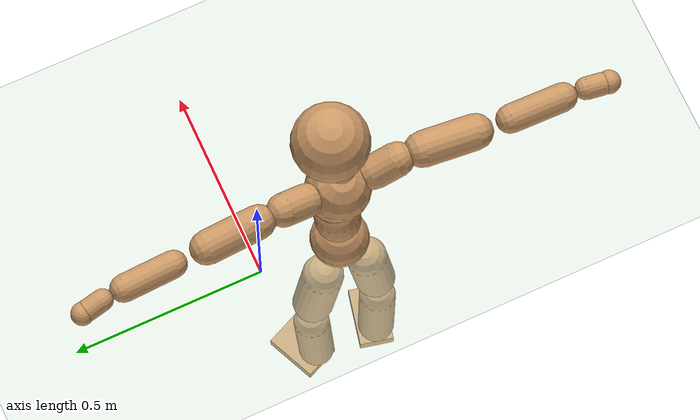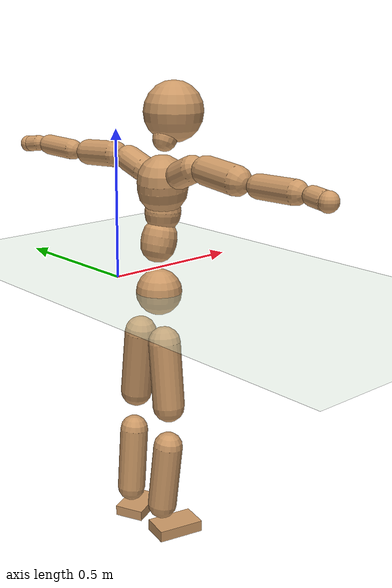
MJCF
<mujoco model="humanoid">
  <compiler coordinate="local" angle="radian"/>
  <default>
    <joint damping="0.0" armature="0.01" stiffness="0.0" limited="true"/>
    <geom conaffinity="1" condim="3" contype="7" margin="0.001" rgba="0.8 0.6 .4 1"/>
  </default>
  <asset>
    <texture type="skybox" builtin="gradient" rgb1=".4 .5 .6" rgb2="0 0 0" width="100" height="100"/>
    <texture builtin="flat" height="1278" mark="cross" markrgb="1 1 1" name="texgeom" random="0.01" rgb1="0.8 0.6 0.4" rgb2="0.8 0.6 0.4" type="cube" width="127"/>
    <texture builtin="checker" height="100" name="texplane" rgb1="0 0 0" rgb2="0.8 0.8 0.8" type="2d" width="100"/>
    <material name="MatPlane" reflectance="0.5" shininess="1" specular="1" texrepeat="60 60" texture="texplane"/>
    <material name="geom" texture="texgeom" texuniform="true"/>
  </asset>
  <worldbody>
    <light cutoff="100" diffuse="1 1 1" dir="-0 0 -1.3" directional="true" exponent="1" pos="0 0 1.3" specular=".1 .1 .1"/>
    <geom conaffinity="1" condim="3" name="floor" pos="0 0 0" rgba="0.8 0.9 0.8 1" size="100 100 .2" type="plane" material="MatPlane"/>
    <body name="Pelvis" pos="0.0009 -0.2158 -0.0026">
      <freejoint name="Pelvis"/>
      <geom type="sphere" contype="1" conaffinity="1" density="500" size="0.0756" pos="0.0000 0.0000 0.0000" name="Pelvis"/>
      <body name="L_Hip" pos="-0.0302 0.0497 -0.0742">
        <joint name="L_Hip_x" type="hinge" pos="0 0 0" axis="1 0 0" stiffness="800" damping="80" armature="0.02" range="-180.0000 180.0000"/>
        <joint name="L_Hip_y" type="hinge" pos="0 0 0" axis="0 1 0" stiffness="800" damping="80" armature="0.02" range="-180.0000 180.0000"/>
        <joint name="L_Hip_z" type="hinge" pos="0 0 0" axis="0 0 1" stiffness="800" damping="80" armature="0.02" range="-180.0000 180.0000"/>
        <geom type="capsule" contype="1" conaffinity="1" density="500" fromto="0.0011 0.0092 -0.0737 0.0045 0.0369 -0.2949" size="0.0537" name="L_Hip"/>
        <body name="L_Knee" pos="0.0056 0.0461 -0.3687">
          <joint name="L_Knee_x" type="hinge" pos="0 0 0" axis="1 0 0" stiffness="800" damping="80" armature="0.02" range="-180.0000 180.0000"/>
          <joint name="L_Knee_y" type="hinge" pos="0 0 0" axis="0 1 0" stiffness="800" damping="80" armature="0.02" range="-180.0000 180.0000"/>
          <joint name="L_Knee_z" type="hinge" pos="0 0 0" axis="0 0 1" stiffness="800" damping="80" armature="0.02" range="-180.0000 180.0000"/>
          <geom type="capsule" contype="1" conaffinity="1" density="500" fromto="-0.0062 -0.0018 -0.0724 -0.0246 -0.0073 -0.2896" size="0.0479" name="L_Knee"/>
          <body name="L_Ankle" pos="-0.0308 -0.0091 -0.362">
            <joint name="L_Ankle_x" type="hinge" pos="0 0 0" axis="1 0 0" stiffness="800" damping="80" armature="0.02" range="-180.0000 180.0000"/>
            <joint name="L_Ankle_y" type="hinge" pos="0 0 0" axis="0 1 0" stiffness="800" damping="80" armature="0.02" range="-180.0000 180.0000"/>
            <joint name="L_Ankle_z" type="hinge" pos="0 0 0" axis="0 0 1" stiffness="800" damping="80" armature="0.02" range="-180.0000 180.0000"/>
            <geom type="box" contype="1" conaffinity="1" density="500" pos="0.0523 0.0233 -0.0267" size="0.0726 0.0499 0.0176" quat="0.9781 0.0000 0.0000 0.2080" name="L_Ankle"/>
            <body name="L_Toe" pos="0.1046 0.0466 -0.0535">
              <joint name="L_Toe_x" type="hinge" pos="0 0 0" axis="1 0 0" stiffness="500" damping="50" armature="0.02" range="-180.0000 180.0000"/>
              <joint name="L_Toe_y" type="hinge" pos="0 0 0" axis="0 1 0" stiffness="500" damping="50" armature="0.02" range="-180.0000 180.0000"/>
              <joint name="L_Toe_z" type="hinge" pos="0 0 0" axis="0 0 1" stiffness="500" damping="50" armature="0.02" range="-180.0000 180.0000"/>
              <geom type="box" contype="1" conaffinity="1" density="500" pos="0.0000 0.0000 0.0289" size="0.001 0.0024 0.001" quat="0.9772 0.0000 0.0000 0.2122" name="L_Toe"/>
            </body>
          </body>
        </body>
      </body>
      <body name="R_Hip" pos="-0.0289 -0.0526 -0.0805">
        <joint name="R_Hip_x" type="hinge" pos="0 0 0" axis="1 0 0" stiffness="800" damping="80" armature="0.02" range="-180.0000 180.0000"/>
        <joint name="R_Hip_y" type="hinge" pos="0 0 0" axis="0 1 0" stiffness="800" damping="80" armature="0.02" range="-180.0000 180.0000"/>
        <joint name="R_Hip_z" type="hinge" pos="0 0 0" axis="0 0 1" stiffness="800" damping="80" armature="0.02" range="-180.0000 180.0000"/>
        <geom type="capsule" contype="1" conaffinity="1" density="500" fromto="-0.0009 -0.0089 -0.0716 -0.0035 -0.0356 -0.2865" size="0.053" name="R_Hip"/>
        <body name="R_Knee" pos="-0.0044 -0.0445 -0.3581">
          <joint name="R_Knee_x" type="hinge" pos="0 0 0" axis="1 0 0" stiffness="800" damping="80" armature="0.02" range="-180.0000 180.0000"/>
          <joint name="R_Knee_y" type="hinge" pos="0 0 0" axis="0 1 0" stiffness="800" damping="80" armature="0.02" range="-180.0000 180.0000"/>
          <joint name="R_Knee_z" type="hinge" pos="0 0 0" axis="0 0 1" stiffness="800" damping="80" armature="0.02" range="-180.0000 180.0000"/>
          <geom type="capsule" contype="1" conaffinity="1" density="500" fromto="-0.0057 0.0030 -0.0711 -0.0227 0.0118 -0.2846" size="0.049" name="R_Knee"/>
          <body name="R_Ankle" pos="-0.0284 0.0148 -0.3557">
            <joint name="R_Ankle_x" type="hinge" pos="0 0 0" axis="1 0 0" stiffness="800" damping="80" armature="0.02" range="-180.0000 180.0000"/>
            <joint name="R_Ankle_y" type="hinge" pos="0 0 0" axis="0 1 0" stiffness="800" damping="80" armature="0.02" range="-180.0000 180.0000"/>
            <joint name="R_Ankle_z" type="hinge" pos="0 0 0" axis="0 0 1" stiffness="800" damping="80" armature="0.02" range="-180.0000 180.0000"/>
            <geom type="box" contype="1" conaffinity="1" density="500" pos="0.0565 -0.0127 -0.0286" size="0.0792 0.0464 0.0193" quat="0.9939 0.0000 0.0000 -0.1105" name="R_Ankle"/>
            <body name="R_Toe" pos="0.1129 -0.0254 -0.0573">
              <joint name="R_Toe_x" type="hinge" pos="0 0 0" axis="1 0 0" stiffness="500" damping="50" armature="0.02" range="-180.0000 180.0000"/>
              <joint name="R_Toe_y" type="hinge" pos="0 0 0" axis="0 1 0" stiffness="500" damping="50" armature="0.02" range="-180.0000 180.0000"/>
              <joint name="R_Toe_z" type="hinge" pos="0 0 0" axis="0 0 1" stiffness="500" damping="50" armature="0.02" range="-180.0000 180.0000"/>
              <geom type="box" contype="1" conaffinity="1" density="500" pos="0.0000 0.0000 0.0318" size="0.0009 0.0022 0.0011" quat="0.9950 0.0000 0.0000 -0.1003" name="R_Toe"/>
            </body>
          </body>
        </body>
      </body>
      <body name="Torso" pos="-0.0134 0.0034 0.1043">
        <joint name="Torso_x" type="hinge" pos="0 0 0" axis="1 0 0" stiffness="1000" damping="100" armature="0.02" range="-180.0000 180.0000"/>
        <joint name="Torso_y" type="hinge" pos="0 0 0" axis="0 1 0" stiffness="1000" damping="100" armature="0.02" range="-180.0000 180.0000"/>
        <joint name="Torso_z" type="hinge" pos="0 0 0" axis="0 0 1" stiffness="1000" damping="100" armature="0.02" range="-180.0000 180.0000"/>
        <geom type="capsule" contype="1" conaffinity="1" density="500" fromto="0.0199 0.0020 0.0783 0.0133 0.0014 0.0522" size="0.0578" name="Torso"/>
        <body name="Spine" pos="0.0331 0.0034 0.1305">
          <joint name="Spine_x" type="hinge" pos="0 0 0" axis="1 0 0" stiffness="1000" damping="100" armature="0.02" range="-180.0000 180.0000"/>
          <joint name="Spine_y" type="hinge" pos="0 0 0" axis="0 1 0" stiffness="1000" damping="100" armature="0.02" range="-180.0000 180.0000"/>
          <joint name="Spine_z" type="hinge" pos="0 0 0" axis="0 0 1" stiffness="1000" damping="100" armature="0.02" range="-180.0000 180.0000"/>
          <geom type="capsule" contype="1" conaffinity="1" density="500" fromto="0.0007 -0.0011 0.0312 0.0005 -0.0007 0.0208" size="0.0587" name="Spine"/>
          <body name="Chest" pos="0.0012 -0.0019 0.052">
            <joint name="Chest_x" type="hinge" pos="0 0 0" axis="1 0 0" stiffness="1000" damping="100" armature="0.02" range="-180.0000 180.0000"/>
            <joint name="Chest_y" type="hinge" pos="0 0 0" axis="0 1 0" stiffness="1000" damping="100" armature="0.02" range="-180.0000 180.0000"/>
            <joint name="Chest_z" type="hinge" pos="0 0 0" axis="0 0 1" stiffness="1000" damping="100" armature="0.02" range="-180.0000 180.0000"/>
            <geom type="capsule" contype="1" conaffinity="1" density="500" fromto="-0.0095 -0.0057 0.0753 -0.0063 -0.0038 0.0502" size="0.0812" name="Chest"/>
            <body name="Neck" pos="-0.0161 -0.0139 0.1849">
              <joint name="Neck_x" type="hinge" pos="0 0 0" axis="1 0 0" stiffness="500" damping="50" armature="0.02" range="-180.0000 180.0000"/>
              <joint name="Neck_y" type="hinge" pos="0 0 0" axis="0 1 0" stiffness="500" damping="50" armature="0.02" range="-180.0000 180.0000"/>
              <joint name="Neck_z" type="hinge" pos="0 0 0" axis="0 0 1" stiffness="500" damping="50" armature="0.02" range="-180.0000 180.0000"/>
              <geom type="capsule" contype="1" conaffinity="1" density="500" fromto="0.0103 0.0017 0.0201 0.0414 0.0068 0.0804" size="0.0388" name="Neck"/>
              <body name="Head" pos="0.0517 0.0086 0.1005">
                <joint name="Head_x" type="hinge" pos="0 0 0" axis="1 0 0" stiffness="500" damping="50" armature="0.02" range="-180.0000 180.0000"/>
                <joint name="Head_y" type="hinge" pos="0 0 0" axis="0 1 0" stiffness="500" damping="50" armature="0.02" range="-180.0000 180.0000"/>
                <joint name="Head_z" type="hinge" pos="0 0 0" axis="0 0 1" stiffness="500" damping="50" armature="0.02" range="-180.0000 180.0000"/>
                <geom type="sphere" contype="1" conaffinity="1" density="500" size="0.0957" pos="0.0000 0.0000 0.0000" name="Head"/>
              </body>
            </body>
            <body name="L_Thorax" pos="-0.0137 0.0603 0.0953">
              <joint name="L_Thorax_x" type="hinge" pos="0 0 0" axis="1 0 0" stiffness="500" damping="50" armature="0.02" range="-180.0000 180.0000"/>
              <joint name="L_Thorax_y" type="hinge" pos="0 0 0" axis="0 1 0" stiffness="500" damping="50" armature="0.02" range="-180.0000 180.0000"/>
              <joint name="L_Thorax_z" type="hinge" pos="0 0 0" axis="0 0 1" stiffness="500" damping="50" armature="0.02" range="-180.0000 180.0000"/>
              <geom type="capsule" contype="1" conaffinity="1" density="500" fromto="-0.0023 0.0210 0.0084 -0.0092 0.0838 0.0338" size="0.0419" name="L_Thorax"/>
              <body name="L_Shoulder" pos="-0.0115 0.1048 0.0422">
                <joint name="L_Shoulder_x" type="hinge" pos="0 0 0" axis="1 0 0" stiffness="500" damping="50" armature="0.02" range="-720.0000 720.0000"/>
                <joint name="L_Shoulder_y" type="hinge" pos="0 0 0" axis="0 1 0" stiffness="500" damping="50" armature="0.02" range="-720.0000 720.0000"/>
                <joint name="L_Shoulder_z" type="hinge" pos="0 0 0" axis="0 0 1" stiffness="500" damping="50" armature="0.02" range="-720.0000 720.0000"/>
                <geom type="capsule" contype="1" conaffinity="1" density="500" fromto="-0.0016 0.0452 -0.0029 -0.0064 0.1807 -0.0114" size="0.0425" name="L_Shoulder"/>
                <body name="L_Elbow" pos="-0.008 0.2258 -0.0143">
                  <joint name="L_Elbow_x" type="hinge" pos="0 0 0" axis="1 0 0" stiffness="500" damping="50" armature="0.02" range="-720.0000 720.0000"/>
                  <joint name="L_Elbow_y" type="hinge" pos="0 0 0" axis="0 1 0" stiffness="500" damping="50" armature="0.02" range="-720.0000 720.0000"/>
                  <joint name="L_Elbow_z" type="hinge" pos="0 0 0" axis="0 0 1" stiffness="500" damping="50" armature="0.02" range="-720.0000 720.0000"/>
                  <geom type="capsule" contype="1" conaffinity="1" density="500" fromto="-0.0023 0.0434 0.0012 -0.0093 0.1735 0.0049" size="0.0342" name="L_Elbow"/>
                  <body name="L_Wrist" pos="-0.0117 0.2169 0.0061">
                    <joint name="L_Wrist_x" type="hinge" pos="0 0 0" axis="1 0 0" stiffness="300" damping="30" armature="0.02" range="-180.0000 180.0000"/>
                    <joint name="L_Wrist_y" type="hinge" pos="0 0 0" axis="0 1 0" stiffness="300" damping="30" armature="0.02" range="-180.0000 180.0000"/>
                    <joint name="L_Wrist_z" type="hinge" pos="0 0 0" axis="0 0 1" stiffness="300" damping="30" armature="0.02" range="-180.0000 180.0000"/>
                    <geom type="capsule" contype="1" conaffinity="1" density="500" fromto="-0.0025 0.0138 -0.0017 -0.0099 0.0553 -0.0070" size="0.0273" name="L_Wrist"/>
                    <body name="L_Hand" pos="-0.0123 0.0691 -0.0087">
                      <joint name="L_Hand_x" type="hinge" pos="0 0 0" axis="1 0 0" stiffness="300" damping="30" armature="0.02" range="-180.0000 180.0000"/>
                      <joint name="L_Hand_y" type="hinge" pos="0 0 0" axis="0 1 0" stiffness="300" damping="30" armature="0.02" range="-180.0000 180.0000"/>
                      <joint name="L_Hand_z" type="hinge" pos="0 0 0" axis="0 0 1" stiffness="300" damping="30" armature="0.02" range="-180.0000 180.0000"/>
                      <geom type="sphere" contype="1" conaffinity="1" density="500" size="0.0285" pos="0.0000 0.0000 0.0000" name="L_Hand"/>
                    </body>
                  </body>
                </body>
              </body>
            </body>
            <body name="R_Thorax" pos="-0.0176 -0.075 0.0964">
              <joint name="R_Thorax_x" type="hinge" pos="0 0 0" axis="1 0 0" stiffness="500" damping="50" armature="0.02" range="-180.0000 180.0000"/>
              <joint name="R_Thorax_y" type="hinge" pos="0 0 0" axis="0 1 0" stiffness="500" damping="50" armature="0.02" range="-180.0000 180.0000"/>
              <joint name="R_Thorax_z" type="hinge" pos="0 0 0" axis="0 0 1" stiffness="500" damping="50" armature="0.02" range="-180.0000 180.0000"/>
              <geom type="capsule" contype="1" conaffinity="1" density="500" fromto="-0.0006 -0.0198 0.0087 -0.0025 -0.0790 0.0350" size="0.0431" name="R_Thorax"/>
              <body name="R_Shoulder" pos="-0.0031 -0.0988 0.0437">
                <joint name="R_Shoulder_x" type="hinge" pos="0 0 0" axis="1 0 0" stiffness="500" damping="50" armature="0.02" range="-720.0000 720.0000"/>
                <joint name="R_Shoulder_y" type="hinge" pos="0 0 0" axis="0 1 0" stiffness="500" damping="50" armature="0.02" range="-720.0000 720.0000"/>
                <joint name="R_Shoulder_z" type="hinge" pos="0 0 0" axis="0 0 1" stiffness="500" damping="50" armature="0.02" range="-720.0000 720.0000"/>
                <geom type="capsule" contype="1" conaffinity="1" density="500" fromto="-0.0032 -0.0450 -0.0035 -0.0128 -0.1799 -0.0139" size="0.0449" name="R_Shoulder"/>
                <body name="R_Elbow" pos="-0.016 -0.2249 -0.0174">
                  <joint name="R_Elbow_x" type="hinge" pos="0 0 0" axis="1 0 0" stiffness="500" damping="50" armature="0.02" range="-720.0000 720.0000"/>
                  <joint name="R_Elbow_y" type="hinge" pos="0 0 0" axis="0 1 0" stiffness="500" damping="50" armature="0.02" range="-720.0000 720.0000"/>
                  <joint name="R_Elbow_z" type="hinge" pos="0 0 0" axis="0 0 1" stiffness="500" damping="50" armature="0.02" range="-720.0000 720.0000"/>
                  <geom type="capsule" contype="1" conaffinity="1" density="500" fromto="-0.0013 -0.0458 0.0014 -0.0053 -0.1832 0.0057" size="0.0358" name="R_Elbow"/>
                  <body name="R_Wrist" pos="-0.0067 -0.229 0.0071">
                    <joint name="R_Wrist_x" type="hinge" pos="0 0 0" axis="1 0 0" stiffness="300" damping="30" armature="0.02" range="-180.0000 180.0000"/>
                    <joint name="R_Wrist_y" type="hinge" pos="0 0 0" axis="0 1 0" stiffness="300" damping="30" armature="0.02" range="-180.0000 180.0000"/>
                    <joint name="R_Wrist_z" type="hinge" pos="0 0 0" axis="0 0 1" stiffness="300" damping="30" armature="0.02" range="-180.0000 180.0000"/>
                    <geom type="capsule" contype="1" conaffinity="1" density="500" fromto="-0.0017 -0.0145 -0.0013 -0.0066 -0.0580 -0.0054" size="0.0284" name="R_Wrist"/>
                    <body name="R_Hand" pos="-0.0083 -0.0725 -0.0067">
                      <joint name="R_Hand_x" type="hinge" pos="0 0 0" axis="1 0 0" stiffness="300" damping="30" armature="0.02" range="-180.0000 180.0000"/>
                      <joint name="R_Hand_y" type="hinge" pos="0 0 0" axis="0 1 0" stiffness="300" damping="30" armature="0.02" range="-180.0000 180.0000"/>
                      <joint name="R_Hand_z" type="hinge" pos="0 0 0" axis="0 0 1" stiffness="300" damping="30" armature="0.02" range="-180.0000 180.0000"/>
                      <geom type="sphere" contype="1" conaffinity="1" density="500" size="0.0296" pos="0.0000 0.0000 0.0000" name="R_Hand"/>
                    </body>
                  </body>
                </body>
              </body>
            </body>
          </body>
        </body>
      </body>
    </body>
  </worldbody>
  <actuator>
    <motor name="L_Hip_x" joint="L_Hip_x" gear="500"/>
    <motor name="L_Hip_y" joint="L_Hip_y" gear="500"/>
    <motor name="L_Hip_z" joint="L_Hip_z" gear="500"/>
    <motor name="L_Knee_x" joint="L_Knee_x" gear="500"/>
    <motor name="L_Knee_y" joint="L_Knee_y" gear="500"/>
    <motor name="L_Knee_z" joint="L_Knee_z" gear="500"/>
    <motor name="L_Ankle_x" joint="L_Ankle_x" gear="500"/>
    <motor name="L_Ankle_y" joint="L_Ankle_y" gear="500"/>
    <motor name="L_Ankle_z" joint="L_Ankle_z" gear="500"/>
    <motor name="L_Toe_x" joint="L_Toe_x" gear="500"/>
    <motor name="L_Toe_y" joint="L_Toe_y" gear="500"/>
    <motor name="L_Toe_z" joint="L_Toe_z" gear="500"/>
    <motor name="R_Hip_x" joint="R_Hip_x" gear="500"/>
    <motor name="R_Hip_y" joint="R_Hip_y" gear="500"/>
    <motor name="R_Hip_z" joint="R_Hip_z" gear="500"/>
    <motor name="R_Knee_x" joint="R_Knee_x" gear="500"/>
    <motor name="R_Knee_y" joint="R_Knee_y" gear="500"/>
    <motor name="R_Knee_z" joint="R_Knee_z" gear="500"/>
    <motor name="R_Ankle_x" joint="R_Ankle_x" gear="500"/>
    <motor name="R_Ankle_y" joint="R_Ankle_y" gear="500"/>
    <motor name="R_Ankle_z" joint="R_Ankle_z" gear="500"/>
    <motor name="R_Toe_x" joint="R_Toe_x" gear="500"/>
    <motor name="R_Toe_y" joint="R_Toe_y" gear="500"/>
    <motor name="R_Toe_z" joint="R_Toe_z" gear="500"/>
    <motor name="Torso_x" joint="Torso_x" gear="500"/>
    <motor name="Torso_y" joint="Torso_y" gear="500"/>
    <motor name="Torso_z" joint="Torso_z" gear="500"/>
    <motor name="Spine_x" joint="Spine_x" gear="500"/>
    <motor name="Spine_y" joint="Spine_y" gear="500"/>
    <motor name="Spine_z" joint="Spine_z" gear="500"/>
    <motor name="Chest_x" joint="Chest_x" gear="500"/>
    <motor name="Chest_y" joint="Chest_y" gear="500"/>
    <motor name="Chest_z" joint="Chest_z" gear="500"/>
    <motor name="Neck_x" joint="Neck_x" gear="500"/>
    <motor name="Neck_y" joint="Neck_y" gear="500"/>
    <motor name="Neck_z" joint="Neck_z" gear="500"/>
    <motor name="Head_x" joint="Head_x" gear="500"/>
    <motor name="Head_y" joint="Head_y" gear="500"/>
    <motor name="Head_z" joint="Head_z" gear="500"/>
    <motor name="L_Thorax_x" joint="L_Thorax_x" gear="500"/>
    <motor name="L_Thorax_y" joint="L_Thorax_y" gear="500"/>
    <motor name="L_Thorax_z" joint="L_Thorax_z" gear="500"/>
    <motor name="L_Shoulder_x" joint="L_Shoulder_x" gear="500"/>
    <motor name="L_Shoulder_y" joint="L_Shoulder_y" gear="500"/>
    <motor name="L_Shoulder_z" joint="L_Shoulder_z" gear="500"/>
    <motor name="L_Elbow_x" joint="L_Elbow_x" gear="500"/>
    <motor name="L_Elbow_y" joint="L_Elbow_y" gear="500"/>
    <motor name="L_Elbow_z" joint="L_Elbow_z" gear="500"/>
    <motor name="L_Wrist_x" joint="L_Wrist_x" gear="500"/>
    <motor name="L_Wrist_y" joint="L_Wrist_y" gear="500"/>
    <motor name="L_Wrist_z" joint="L_Wrist_z" gear="500"/>
    <motor name="L_Hand_x" joint="L_Hand_x" gear="500"/>
    <motor name="L_Hand_y" joint="L_Hand_y" gear="500"/>
    <motor name="L_Hand_z" joint="L_Hand_z" gear="500"/>
    <motor name="R_Thorax_x" joint="R_Thorax_x" gear="500"/>
    <motor name="R_Thorax_y" joint="R_Thorax_y" gear="500"/>
    <motor name="R_Thorax_z" joint="R_Thorax_z" gear="500"/>
    <motor name="R_Shoulder_x" joint="R_Shoulder_x" gear="500"/>
    <motor name="R_Shoulder_y" joint="R_Shoulder_y" gear="500"/>
    <motor name="R_Shoulder_z" joint="R_Shoulder_z" gear="500"/>
    <motor name="R_Elbow_x" joint="R_Elbow_x" gear="500"/>
    <motor name="R_Elbow_y" joint="R_Elbow_y" gear="500"/>
    <motor name="R_Elbow_z" joint="R_Elbow_z" gear="500"/>
    <motor name="R_Wrist_x" joint="R_Wrist_x" gear="500"/>
    <motor name="R_Wrist_y" joint="R_Wrist_y" gear="500"/>
    <motor name="R_Wrist_z" joint="R_Wrist_z" gear="500"/>
    <motor name="R_Hand_x" joint="R_Hand_x" gear="500"/>
    <motor name="R_Hand_y" joint="R_Hand_y" gear="500"/>
    <motor name="R_Hand_z" joint="R_Hand_z" gear="500"/>
  </actuator>
  <contact>
    <exclude body1="Torso" body2="Chest"/>
    <exclude body1="Head" body2="Chest"/>
    <exclude body1="R_Knee" body2="R_Toe"/>
    <exclude body1="R_Knee" body2="L_Ankle"/>
    <exclude body1="R_Knee" body2="L_Toe"/>
    <exclude body1="L_Knee" body2="L_Toe"/>
    <exclude body1="L_Knee" body2="R_Ankle"/>
    <exclude body1="L_Knee" body2="R_Toe"/>
    <exclude body1="L_Shoulder" body2="Chest"/>
    <exclude body1="R_Shoulder" body2="Chest"/>
  </contact>
  <sensor/>
  <size njmax="700" nconmax="700"/>
</mujoco>
